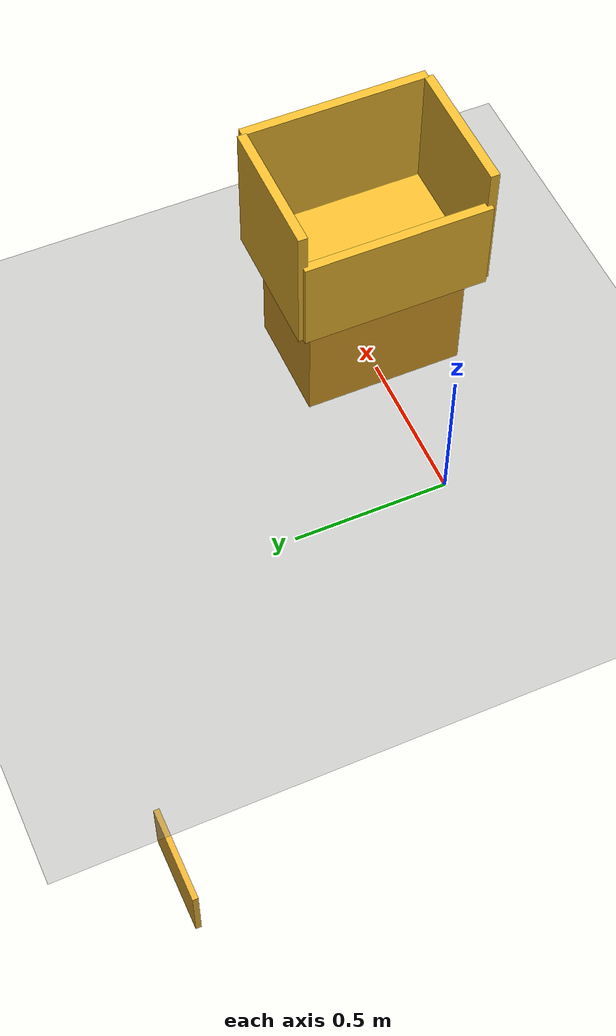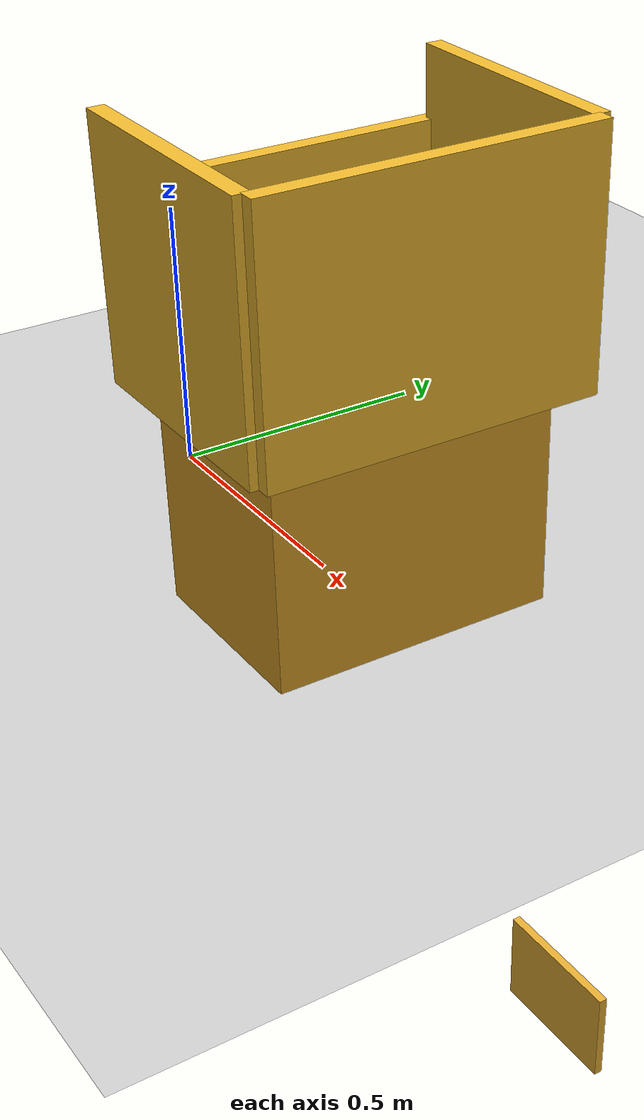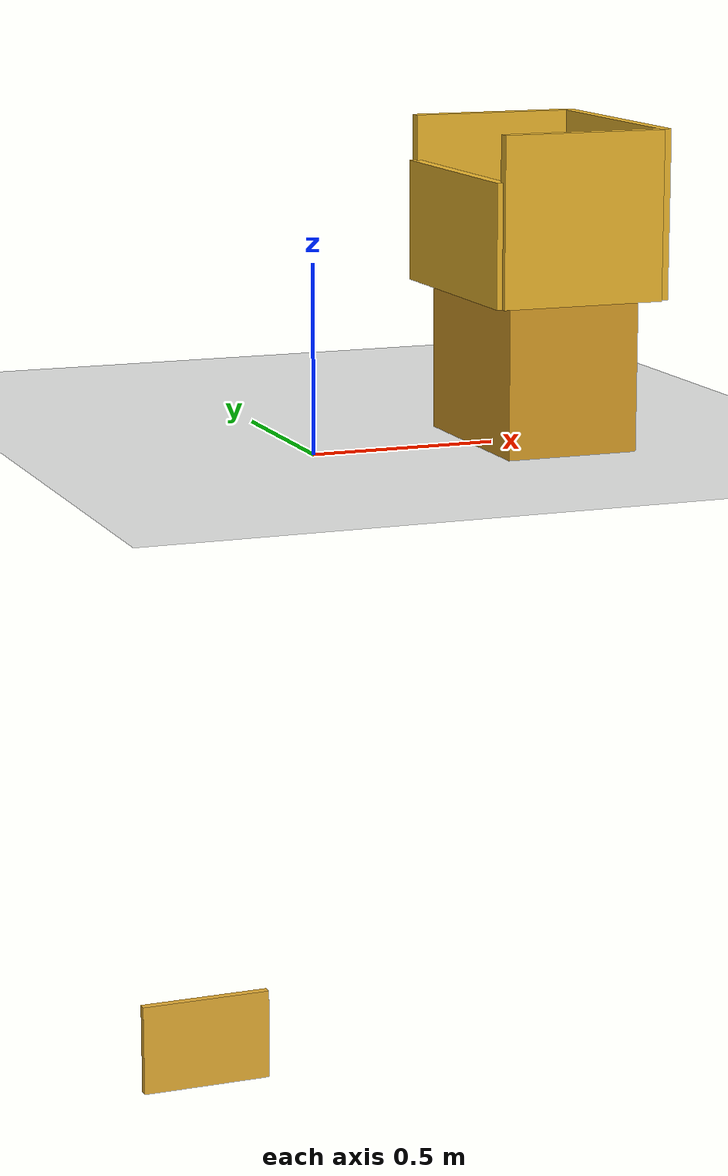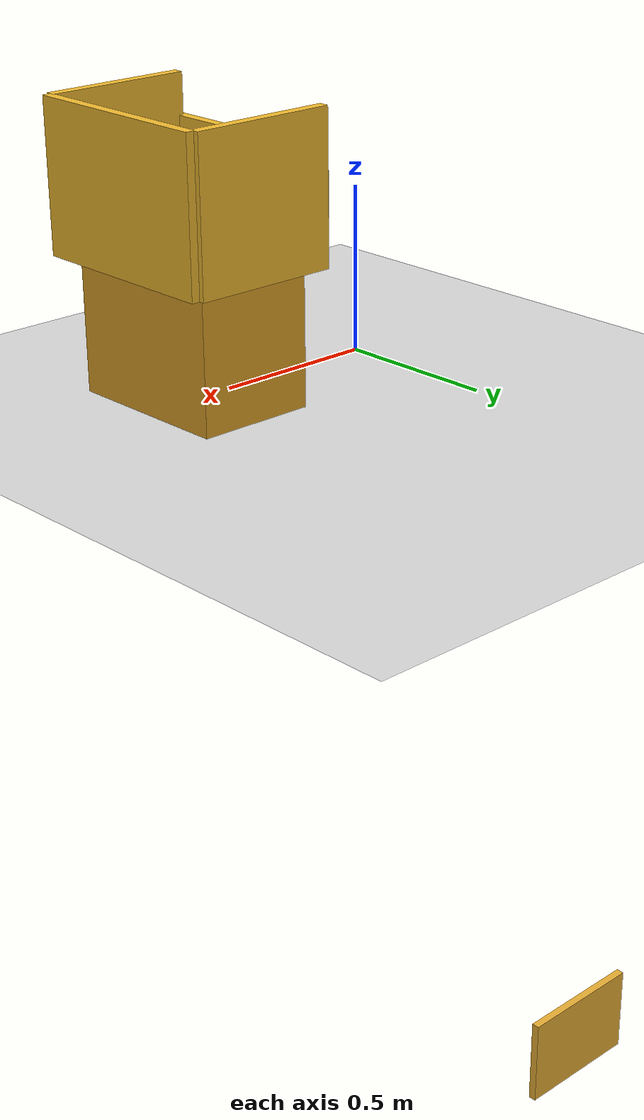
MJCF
<mujoco model="cubby_overreach">
  <compiler angle="radian" autolimits="true" boundmass="0" balanceinertia="true"/>
  <option impratio="10" gravity="0 0 -9.8" integrator="implicitfast" cone="elliptic" jacobian="sparse" noslip_iterations="4">
    <flag multiccd="enable" contact="enable" warmstart="enable"/>
  </option>
  <size njmax="6000" nconmax="6000"/>
  <visual><global offwidth="1280" offheight="720"/><map znear="0.001"/>
    <headlight ambient="0.5 0.5 0.5" diffuse="0.65 0.65 0.65"/></visual>
  <asset>
    <texture name="boxtex" type="2d" builtin="flat" rgb1="0.93 0.72 0.18" width="32" height="32"/>
    <material name="boxmat" texture="boxtex" reflectance="0.05"/>
    <texture name="floortex" type="2d" builtin="checker" rgb1="0.46 0.46 0.48" rgb2="0.40 0.40 0.42" width="300" height="300"/>
    <material name="floormat" texture="floortex" texrepeat="10 10" reflectance="0.05"/>
  </asset>
  <default>
    <default class="cub">
      <geom contype="8" conaffinity="15" group="0" friction="0.9 0.9 0.001"
            solref="0.02 1" solimp="0.998 0.998 0.001" density="500" material="boxmat"/>
    </default>
  </default>
  <worldbody>
    <light name="l_key" pos="0.4 0.5 2.6" dir="0 0 -1" diffuse="0.95 0.95 0.95"/>
    <light name="l_fill" pos="-0.6 -0.7 2.1" dir="0.3 0.3 -1" diffuse="0.5 0.5 0.5"/>
    <geom name="floor" type="plane" size="5 5 0.1" pos="0 0 0" material="floormat" contype="8" conaffinity="15"/>
    <!-- open-top cubby box: floor + back + sides static; FRONT WALL + DIVIDER mocap (knobs) -->
    <geom name="cub_floor" class="cub" type="box" pos="0.62 0 0.42" size="0.22 0.30 0.02"/>
    <geom name="cub_stand" class="cub" type="box" pos="0.62 0 0.20" size="0.18 0.26 0.20" rgba="0.85 0.62 0.15 1"/>
    <geom name="cub_back" class="cub" type="box" pos="0.85 0 0.62" size="0.015 0.30 0.22"/>
    <geom name="cub_left" class="cub" type="box" pos="0.62 0.30 0.62" size="0.22 0.015 0.22"/>
    <geom name="cub_right" class="cub" type="box" pos="0.62 -0.30 0.62" size="0.22 0.015 0.22"/>
    <body name="front_wall" mocap="true" pos="0.40 0 0.56"><geom name="front_wall_g" class="cub" type="box" size="0.015 0.30 0.16"/></body>
    <body name="divider" mocap="true" pos="0 1.0 -2.0"><geom name="divider_g" class="cub" type="box" size="0.20 0.012 0.14" rgba="0.9 0.68 0.2 1"/></body>
  </worldbody>
</mujoco>
